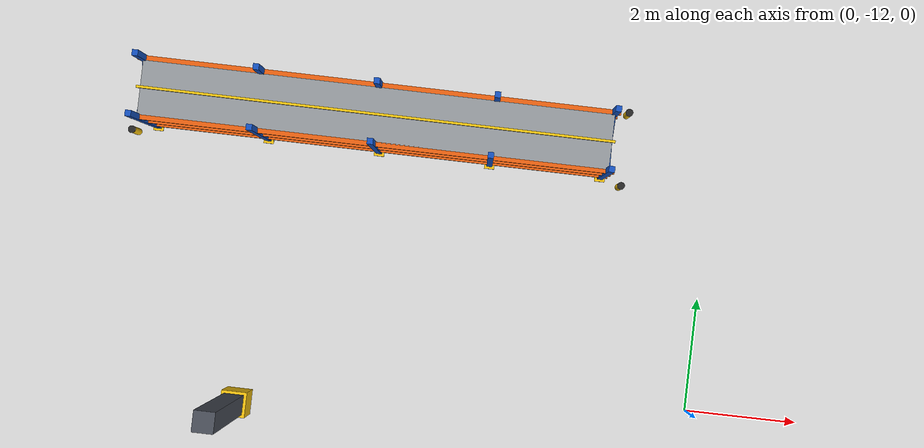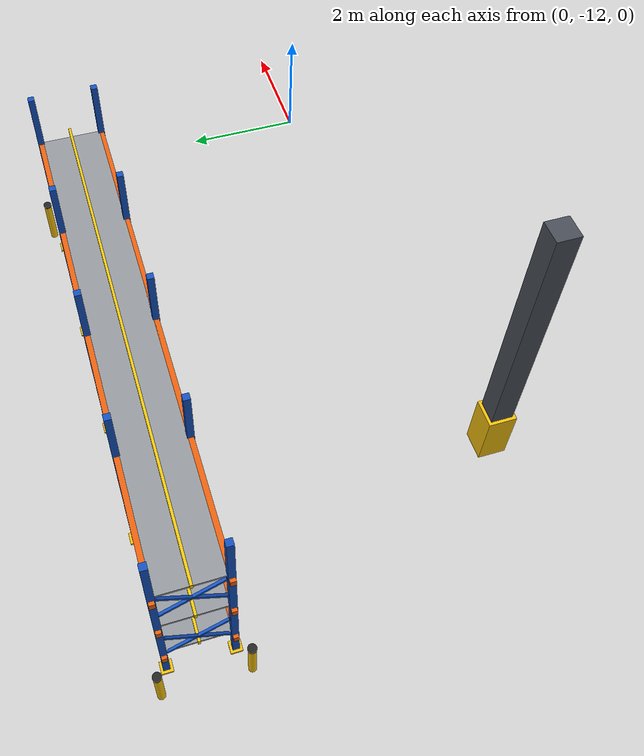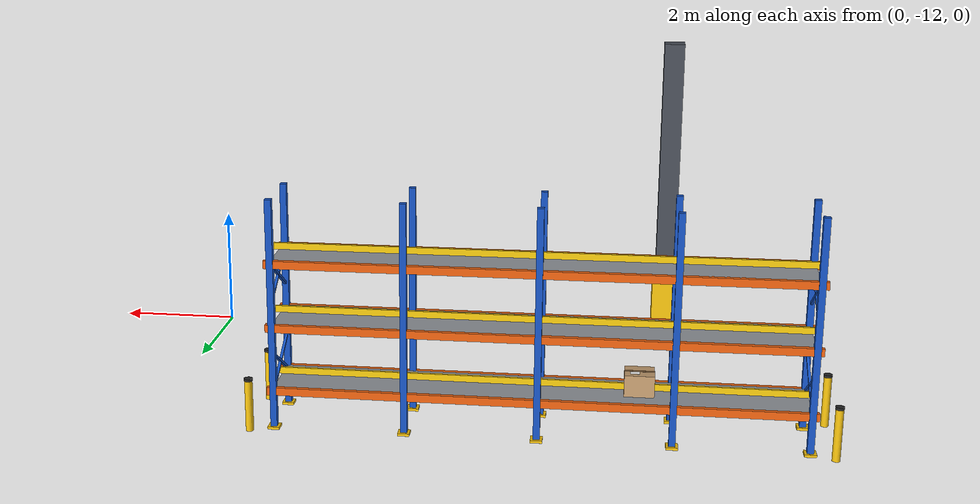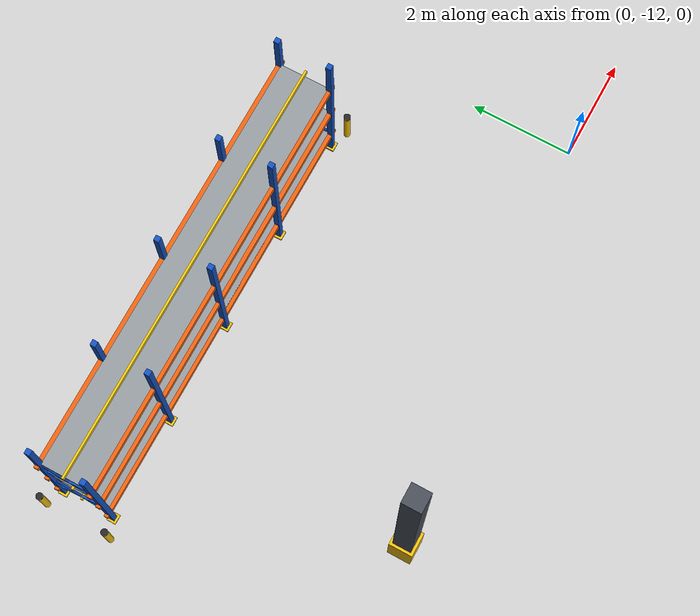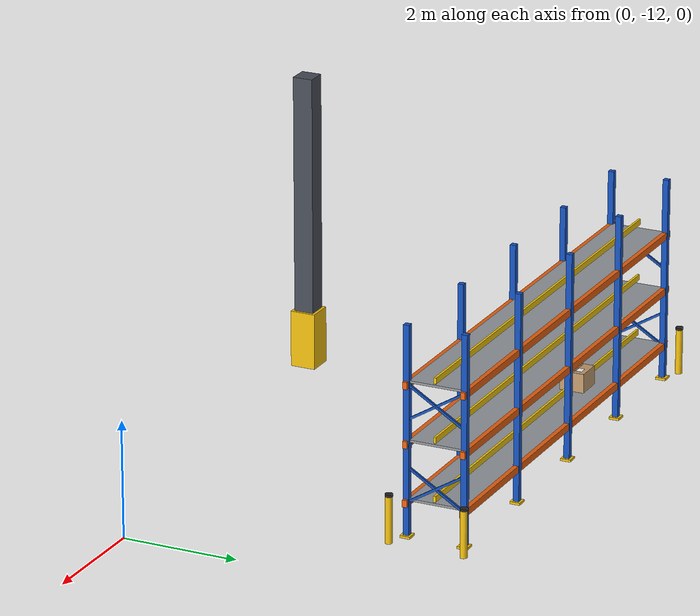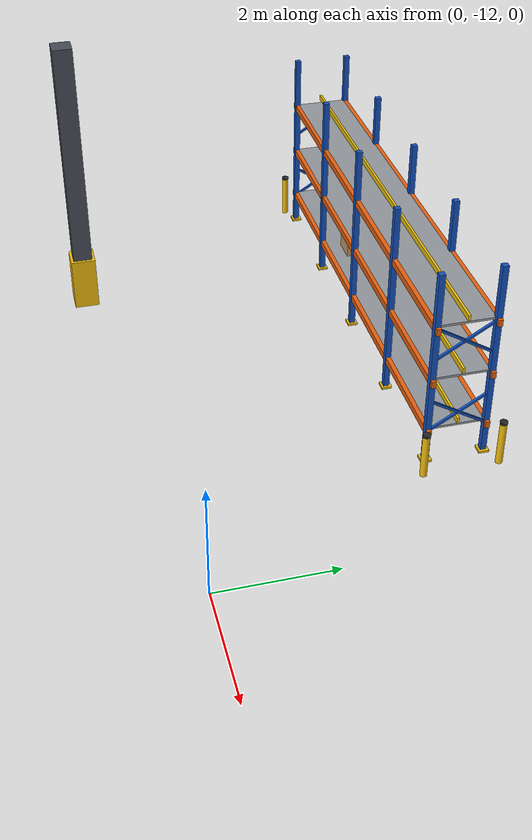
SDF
<sdf version="1.8">
 <world name="warehouse_3d">
  <model name="warehouse_architecture">
   <static>true</static>
   <link name="col_12_base">
    <pose>-8.0000 -12.7500 0.5000 0.0000 0.0000 0.0000</pose>
    <collision name="col_12_base_col">
     <geometry><box><size>0.4500 0.4500 1.0000</size></box></geometry>
    </collision>
    <visual name="col_12_base_vis">
     <geometry><box><size>0.4500 0.4500 1.0000</size></box></geometry>
     <material>
      <ambient>0.617 0.488 0.033 1.00</ambient>
      <diffuse>0.950 0.750 0.050 1.00</diffuse>
      <specular>0.15 0.15 0.15 1.0</specular>
     </material>
    </visual>
   </link>
   <link name="col_12_stem">
    <pose>-8.0000 -12.7500 3.1000 0.0000 0.0000 0.0000</pose>
    <collision name="col_12_stem_col">
     <geometry><box><size>0.3500 0.3500 4.2000</size></box></geometry>
    </collision>
    <visual name="col_12_stem_vis">
     <geometry><box><size>0.3500 0.3500 4.2000</size></box></geometry>
     <material>
      <ambient>0.182 0.195 0.221 1.00</ambient>
      <diffuse>0.280 0.300 0.340 1.00</diffuse>
      <specular>0.15 0.15 0.15 1.0</specular>
     </material>
    </visual>
   </link>
  </model>
  <model name="Rack_A">
   <static>true</static>
   <pose>-6.00 -7.50 0 0 0 0</pose>
   <link name="col_0_0">
    <pose>-4.0000 -0.5000 1.8000 0.0000 0.0000 0.0000</pose>
    <collision name="col_0_0_col"><geometry><box><size>0.1000 0.1000 3.6000</size></box></geometry></collision>
    <visual name="col_0_0_vis">
     <geometry><box><size>0.1000 0.1000 3.6000</size></box></geometry>
     <material>
      <ambient>0.052 0.208 0.488 1.00</ambient>
      <diffuse>0.080 0.320 0.750 1.00</diffuse>
      <specular>0.15 0.15 0.15 1.0</specular>
     </material>
    </visual>
   </link>
   <link name="foot_0_0">
    <pose>-4.0000 -0.5000 0.0200 0.0000 0.0000 0.0000</pose>
    <collision name="foot_0_0_col"><geometry><box><size>0.1800 0.1800 0.0400</size></box></geometry></collision>
    <visual name="foot_0_0_vis">
     <geometry><box><size>0.1800 0.1800 0.0400</size></box></geometry>
     <material>
      <ambient>0.617 0.488 0.033 1.00</ambient>
      <diffuse>0.950 0.750 0.050 1.00</diffuse>
      <specular>0.15 0.15 0.15 1.0</specular>
     </material>
    </visual>
   </link>
   <link name="col_0_1">
    <pose>-4.0000 0.5000 1.8000 0.0000 0.0000 0.0000</pose>
    <collision name="col_0_1_col"><geometry><box><size>0.1000 0.1000 3.6000</size></box></geometry></collision>
    <visual name="col_0_1_vis">
     <geometry><box><size>0.1000 0.1000 3.6000</size></box></geometry>
     <material>
      <ambient>0.052 0.208 0.488 1.00</ambient>
      <diffuse>0.080 0.320 0.750 1.00</diffuse>
      <specular>0.15 0.15 0.15 1.0</specular>
     </material>
    </visual>
   </link>
   <link name="foot_0_1">
    <pose>-4.0000 0.5000 0.0200 0.0000 0.0000 0.0000</pose>
    <collision name="foot_0_1_col"><geometry><box><size>0.1800 0.1800 0.0400</size></box></geometry></collision>
    <visual name="foot_0_1_vis">
     <geometry><box><size>0.1800 0.1800 0.0400</size></box></geometry>
     <material>
      <ambient>0.617 0.488 0.033 1.00</ambient>
      <diffuse>0.950 0.750 0.050 1.00</diffuse>
      <specular>0.15 0.15 0.15 1.0</specular>
     </material>
    </visual>
   </link>
   <link name="col_1_0">
    <pose>-2.0000 -0.5000 1.8000 0.0000 0.0000 0.0000</pose>
    <collision name="col_1_0_col"><geometry><box><size>0.1000 0.1000 3.6000</size></box></geometry></collision>
    <visual name="col_1_0_vis">
     <geometry><box><size>0.1000 0.1000 3.6000</size></box></geometry>
     <material>
      <ambient>0.052 0.208 0.488 1.00</ambient>
      <diffuse>0.080 0.320 0.750 1.00</diffuse>
      <specular>0.15 0.15 0.15 1.0</specular>
     </material>
    </visual>
   </link>
   <link name="foot_1_0">
    <pose>-2.0000 -0.5000 0.0200 0.0000 0.0000 0.0000</pose>
    <collision name="foot_1_0_col"><geometry><box><size>0.1800 0.1800 0.0400</size></box></geometry></collision>
    <visual name="foot_1_0_vis">
     <geometry><box><size>0.1800 0.1800 0.0400</size></box></geometry>
     <material>
      <ambient>0.617 0.488 0.033 1.00</ambient>
      <diffuse>0.950 0.750 0.050 1.00</diffuse>
      <specular>0.15 0.15 0.15 1.0</specular>
     </material>
    </visual>
   </link>
   <link name="col_1_1">
    <pose>-2.0000 0.5000 1.8000 0.0000 0.0000 0.0000</pose>
    <collision name="col_1_1_col"><geometry><box><size>0.1000 0.1000 3.6000</size></box></geometry></collision>
    <visual name="col_1_1_vis">
     <geometry><box><size>0.1000 0.1000 3.6000</size></box></geometry>
     <material>
      <ambient>0.052 0.208 0.488 1.00</ambient>
      <diffuse>0.080 0.320 0.750 1.00</diffuse>
      <specular>0.15 0.15 0.15 1.0</specular>
     </material>
    </visual>
   </link>
   <link name="foot_1_1">
    <pose>-2.0000 0.5000 0.0200 0.0000 0.0000 0.0000</pose>
    <collision name="foot_1_1_col"><geometry><box><size>0.1800 0.1800 0.0400</size></box></geometry></collision>
    <visual name="foot_1_1_vis">
     <geometry><box><size>0.1800 0.1800 0.0400</size></box></geometry>
     <material>
      <ambient>0.617 0.488 0.033 1.00</ambient>
      <diffuse>0.950 0.750 0.050 1.00</diffuse>
      <specular>0.15 0.15 0.15 1.0</specular>
     </material>
    </visual>
   </link>
   <link name="col_2_0">
    <pose>0.0000 -0.5000 1.8000 0.0000 0.0000 0.0000</pose>
    <collision name="col_2_0_col"><geometry><box><size>0.1000 0.1000 3.6000</size></box></geometry></collision>
    <visual name="col_2_0_vis">
     <geometry><box><size>0.1000 0.1000 3.6000</size></box></geometry>
     <material>
      <ambient>0.052 0.208 0.488 1.00</ambient>
      <diffuse>0.080 0.320 0.750 1.00</diffuse>
      <specular>0.15 0.15 0.15 1.0</specular>
     </material>
    </visual>
   </link>
   <link name="foot_2_0">
    <pose>0.0000 -0.5000 0.0200 0.0000 0.0000 0.0000</pose>
    <collision name="foot_2_0_col"><geometry><box><size>0.1800 0.1800 0.0400</size></box></geometry></collision>
    <visual name="foot_2_0_vis">
     <geometry><box><size>0.1800 0.1800 0.0400</size></box></geometry>
     <material>
      <ambient>0.617 0.488 0.033 1.00</ambient>
      <diffuse>0.950 0.750 0.050 1.00</diffuse>
      <specular>0.15 0.15 0.15 1.0</specular>
     </material>
    </visual>
   </link>
   <link name="col_2_1">
    <pose>0.0000 0.5000 1.8000 0.0000 0.0000 0.0000</pose>
    <collision name="col_2_1_col"><geometry><box><size>0.1000 0.1000 3.6000</size></box></geometry></collision>
    <visual name="col_2_1_vis">
     <geometry><box><size>0.1000 0.1000 3.6000</size></box></geometry>
     <material>
      <ambient>0.052 0.208 0.488 1.00</ambient>
      <diffuse>0.080 0.320 0.750 1.00</diffuse>
      <specular>0.15 0.15 0.15 1.0</specular>
     </material>
    </visual>
   </link>
   <link name="foot_2_1">
    <pose>0.0000 0.5000 0.0200 0.0000 0.0000 0.0000</pose>
    <collision name="foot_2_1_col"><geometry><box><size>0.1800 0.1800 0.0400</size></box></geometry></collision>
    <visual name="foot_2_1_vis">
     <geometry><box><size>0.1800 0.1800 0.0400</size></box></geometry>
     <material>
      <ambient>0.617 0.488 0.033 1.00</ambient>
      <diffuse>0.950 0.750 0.050 1.00</diffuse>
      <specular>0.15 0.15 0.15 1.0</specular>
     </material>
    </visual>
   </link>
   <link name="col_3_0">
    <pose>2.0000 -0.5000 1.8000 0.0000 0.0000 0.0000</pose>
    <collision name="col_3_0_col"><geometry><box><size>0.1000 0.1000 3.6000</size></box></geometry></collision>
    <visual name="col_3_0_vis">
     <geometry><box><size>0.1000 0.1000 3.6000</size></box></geometry>
     <material>
      <ambient>0.052 0.208 0.488 1.00</ambient>
      <diffuse>0.080 0.320 0.750 1.00</diffuse>
      <specular>0.15 0.15 0.15 1.0</specular>
     </material>
    </visual>
   </link>
   <link name="foot_3_0">
    <pose>2.0000 -0.5000 0.0200 0.0000 0.0000 0.0000</pose>
    <collision name="foot_3_0_col"><geometry><box><size>0.1800 0.1800 0.0400</size></box></geometry></collision>
    <visual name="foot_3_0_vis">
     <geometry><box><size>0.1800 0.1800 0.0400</size></box></geometry>
     <material>
      <ambient>0.617 0.488 0.033 1.00</ambient>
      <diffuse>0.950 0.750 0.050 1.00</diffuse>
      <specular>0.15 0.15 0.15 1.0</specular>
     </material>
    </visual>
   </link>
   <link name="col_3_1">
    <pose>2.0000 0.5000 1.8000 0.0000 0.0000 0.0000</pose>
    <collision name="col_3_1_col"><geometry><box><size>0.1000 0.1000 3.6000</size></box></geometry></collision>
    <visual name="col_3_1_vis">
     <geometry><box><size>0.1000 0.1000 3.6000</size></box></geometry>
     <material>
      <ambient>0.052 0.208 0.488 1.00</ambient>
      <diffuse>0.080 0.320 0.750 1.00</diffuse>
      <specular>0.15 0.15 0.15 1.0</specular>
     </material>
    </visual>
   </link>
   <link name="foot_3_1">
    <pose>2.0000 0.5000 0.0200 0.0000 0.0000 0.0000</pose>
    <collision name="foot_3_1_col"><geometry><box><size>0.1800 0.1800 0.0400</size></box></geometry></collision>
    <visual name="foot_3_1_vis">
     <geometry><box><size>0.1800 0.1800 0.0400</size></box></geometry>
     <material>
      <ambient>0.617 0.488 0.033 1.00</ambient>
      <diffuse>0.950 0.750 0.050 1.00</diffuse>
      <specular>0.15 0.15 0.15 1.0</specular>
     </material>
    </visual>
   </link>
   <link name="col_4_0">
    <pose>4.0000 -0.5000 1.8000 0.0000 0.0000 0.0000</pose>
    <collision name="col_4_0_col"><geometry><box><size>0.1000 0.1000 3.6000</size></box></geometry></collision>
    <visual name="col_4_0_vis">
     <geometry><box><size>0.1000 0.1000 3.6000</size></box></geometry>
     <material>
      <ambient>0.052 0.208 0.488 1.00</ambient>
      <diffuse>0.080 0.320 0.750 1.00</diffuse>
      <specular>0.15 0.15 0.15 1.0</specular>
     </material>
    </visual>
   </link>
   <link name="foot_4_0">
    <pose>4.0000 -0.5000 0.0200 0.0000 0.0000 0.0000</pose>
    <collision name="foot_4_0_col"><geometry><box><size>0.1800 0.1800 0.0400</size></box></geometry></collision>
    <visual name="foot_4_0_vis">
     <geometry><box><size>0.1800 0.1800 0.0400</size></box></geometry>
     <material>
      <ambient>0.617 0.488 0.033 1.00</ambient>
      <diffuse>0.950 0.750 0.050 1.00</diffuse>
      <specular>0.15 0.15 0.15 1.0</specular>
     </material>
    </visual>
   </link>
   <link name="col_4_1">
    <pose>4.0000 0.5000 1.8000 0.0000 0.0000 0.0000</pose>
    <collision name="col_4_1_col"><geometry><box><size>0.1000 0.1000 3.6000</size></box></geometry></collision>
    <visual name="col_4_1_vis">
     <geometry><box><size>0.1000 0.1000 3.6000</size></box></geometry>
     <material>
      <ambient>0.052 0.208 0.488 1.00</ambient>
      <diffuse>0.080 0.320 0.750 1.00</diffuse>
      <specular>0.15 0.15 0.15 1.0</specular>
     </material>
    </visual>
   </link>
   <link name="foot_4_1">
    <pose>4.0000 0.5000 0.0200 0.0000 0.0000 0.0000</pose>
    <collision name="foot_4_1_col"><geometry><box><size>0.1800 0.1800 0.0400</size></box></geometry></collision>
    <visual name="foot_4_1_vis">
     <geometry><box><size>0.1800 0.1800 0.0400</size></box></geometry>
     <material>
      <ambient>0.617 0.488 0.033 1.00</ambient>
      <diffuse>0.950 0.750 0.050 1.00</diffuse>
      <specular>0.15 0.15 0.15 1.0</specular>
     </material>
    </visual>
   </link>
   <link name="x_brace_low_1_w">
    <pose>-4.0000 0.0000 0.9000 0.5500 0.0000 0.0000</pose>
    <visual name="x_brace_low_1_w_vis">
     <geometry><box><size>0.0400 1.0500 0.0400</size></box></geometry>
     <material>
      <ambient>0.052 0.208 0.488 1.00</ambient>
      <diffuse>0.080 0.320 0.750 1.00</diffuse>
      <specular>0.15 0.15 0.15 1.0</specular>
     </material>
    </visual>
   </link>
   <link name="x_brace_low_2_w">
    <pose>-4.0000 0.0000 0.9000 -0.5500 0.0000 0.0000</pose>
    <visual name="x_brace_low_2_w_vis">
     <geometry><box><size>0.0400 1.0500 0.0400</size></box></geometry>
     <material>
      <ambient>0.052 0.208 0.488 1.00</ambient>
      <diffuse>0.080 0.320 0.750 1.00</diffuse>
      <specular>0.15 0.15 0.15 1.0</specular>
     </material>
    </visual>
   </link>
   <link name="x_brace_hi_1_w">
    <pose>-4.0000 0.0000 2.3000 0.5500 0.0000 0.0000</pose>
    <visual name="x_brace_hi_1_w_vis">
     <geometry><box><size>0.0400 1.0500 0.0400</size></box></geometry>
     <material>
      <ambient>0.052 0.208 0.488 1.00</ambient>
      <diffuse>0.080 0.320 0.750 1.00</diffuse>
      <specular>0.15 0.15 0.15 1.0</specular>
     </material>
    </visual>
   </link>
   <link name="x_brace_hi_2_w">
    <pose>-4.0000 0.0000 2.3000 -0.5500 0.0000 0.0000</pose>
    <visual name="x_brace_hi_2_w_vis">
     <geometry><box><size>0.0400 1.0500 0.0400</size></box></geometry>
     <material>
      <ambient>0.052 0.208 0.488 1.00</ambient>
      <diffuse>0.080 0.320 0.750 1.00</diffuse>
      <specular>0.15 0.15 0.15 1.0</specular>
     </material>
    </visual>
   </link>
   <link name="x_brace_low_1_e">
    <pose>4.0000 0.0000 0.9000 0.5500 0.0000 0.0000</pose>
    <visual name="x_brace_low_1_e_vis">
     <geometry><box><size>0.0400 1.0500 0.0400</size></box></geometry>
     <material>
      <ambient>0.052 0.208 0.488 1.00</ambient>
      <diffuse>0.080 0.320 0.750 1.00</diffuse>
      <specular>0.15 0.15 0.15 1.0</specular>
     </material>
    </visual>
   </link>
   <link name="x_brace_low_2_e">
    <pose>4.0000 0.0000 0.9000 -0.5500 0.0000 0.0000</pose>
    <visual name="x_brace_low_2_e_vis">
     <geometry><box><size>0.0400 1.0500 0.0400</size></box></geometry>
     <material>
      <ambient>0.052 0.208 0.488 1.00</ambient>
      <diffuse>0.080 0.320 0.750 1.00</diffuse>
      <specular>0.15 0.15 0.15 1.0</specular>
     </material>
    </visual>
   </link>
   <link name="x_brace_hi_1_e">
    <pose>4.0000 0.0000 2.3000 0.5500 0.0000 0.0000</pose>
    <visual name="x_brace_hi_1_e_vis">
     <geometry><box><size>0.0400 1.0500 0.0400</size></box></geometry>
     <material>
      <ambient>0.052 0.208 0.488 1.00</ambient>
      <diffuse>0.080 0.320 0.750 1.00</diffuse>
      <specular>0.15 0.15 0.15 1.0</specular>
     </material>
    </visual>
   </link>
   <link name="x_brace_hi_2_e">
    <pose>4.0000 0.0000 2.3000 -0.5500 0.0000 0.0000</pose>
    <visual name="x_brace_hi_2_e_vis">
     <geometry><box><size>0.0400 1.0500 0.0400</size></box></geometry>
     <material>
      <ambient>0.052 0.208 0.488 1.00</ambient>
      <diffuse>0.080 0.320 0.750 1.00</diffuse>
      <specular>0.15 0.15 0.15 1.0</specular>
     </material>
    </visual>
   </link>
   <link name="beam_front_0">
    <pose>0.0000 0.5000 0.6000 0.0000 0.0000 0.0000</pose>
    <collision name="beam_front_0_col">
     <geometry><box><size>8.2000 0.0800 0.1200</size></box></geometry>
    </collision>
    <visual name="beam_front_0_vis">
     <geometry><box><size>8.2000 0.0800 0.1200</size></box></geometry>
     <material>
      <ambient>0.598 0.247 0.039 1.00</ambient>
      <diffuse>0.920 0.380 0.060 1.00</diffuse>
      <specular>0.15 0.15 0.15 1.0</specular>
     </material>
    </visual>
   </link>
   <link name="beam_rear_0">
    <pose>0.0000 -0.5000 0.6000 0.0000 0.0000 0.0000</pose>
    <collision name="beam_rear_0_col">
     <geometry><box><size>8.2000 0.0800 0.1200</size></box></geometry>
    </collision>
    <visual name="beam_rear_0_vis">
     <geometry><box><size>8.2000 0.0800 0.1200</size></box></geometry>
     <material>
      <ambient>0.598 0.247 0.039 1.00</ambient>
      <diffuse>0.920 0.380 0.060 1.00</diffuse>
      <specular>0.15 0.15 0.15 1.0</specular>
     </material>
    </visual>
   </link>
   <link name="deck_0">
    <pose>0.0000 0.0000 0.6400 0.0000 0.0000 0.0000</pose>
    <collision name="deck_0_col"><geometry><box><size>8.0000 0.9400 0.0400</size></box></geometry></collision>
    <visual name="deck_0_vis">
     <geometry><box><size>8.0000 0.9400 0.0400</size></box></geometry>
     <material>
      <ambient>0.377 0.390 0.403 1.00</ambient>
      <diffuse>0.580 0.600 0.620 1.00</diffuse>
      <specular>0.15 0.15 0.15 1.0</specular>
     </material>
    </visual>
   </link>
   <link name="backstop_0">
    <pose>0.0000 0.0000 0.7500 0.0000 0.0000 0.0000</pose>
    <visual name="backstop_0_vis">
     <geometry><box><size>8.1000 0.0400 0.1000</size></box></geometry>
     <material>
      <ambient>0.617 0.507 0.033 1.00</ambient>
      <diffuse>0.950 0.780 0.050 1.00</diffuse>
      <specular>0.15 0.15 0.15 1.0</specular>
     </material>
    </visual>
   </link>
   <link name="beam_front_1">
    <pose>0.0000 0.5000 1.6000 0.0000 0.0000 0.0000</pose>
    <collision name="beam_front_1_col">
     <geometry><box><size>8.2000 0.0800 0.1200</size></box></geometry>
    </collision>
    <visual name="beam_front_1_vis">
     <geometry><box><size>8.2000 0.0800 0.1200</size></box></geometry>
     <material>
      <ambient>0.598 0.247 0.039 1.00</ambient>
      <diffuse>0.920 0.380 0.060 1.00</diffuse>
      <specular>0.15 0.15 0.15 1.0</specular>
     </material>
    </visual>
   </link>
   <link name="beam_rear_1">
    <pose>0.0000 -0.5000 1.6000 0.0000 0.0000 0.0000</pose>
    <collision name="beam_rear_1_col">
     <geometry><box><size>8.2000 0.0800 0.1200</size></box></geometry>
    </collision>
    <visual name="beam_rear_1_vis">
     <geometry><box><size>8.2000 0.0800 0.1200</size></box></geometry>
     <material>
      <ambient>0.598 0.247 0.039 1.00</ambient>
      <diffuse>0.920 0.380 0.060 1.00</diffuse>
      <specular>0.15 0.15 0.15 1.0</specular>
     </material>
    </visual>
   </link>
   <link name="deck_1">
    <pose>0.0000 0.0000 1.6400 0.0000 0.0000 0.0000</pose>
    <collision name="deck_1_col"><geometry><box><size>8.0000 0.9400 0.0400</size></box></geometry></collision>
    <visual name="deck_1_vis">
     <geometry><box><size>8.0000 0.9400 0.0400</size></box></geometry>
     <material>
      <ambient>0.377 0.390 0.403 1.00</ambient>
      <diffuse>0.580 0.600 0.620 1.00</diffuse>
      <specular>0.15 0.15 0.15 1.0</specular>
     </material>
    </visual>
   </link>
   <link name="backstop_1">
    <pose>0.0000 0.0000 1.7500 0.0000 0.0000 0.0000</pose>
    <visual name="backstop_1_vis">
     <geometry><box><size>8.1000 0.0400 0.1000</size></box></geometry>
     <material>
      <ambient>0.617 0.507 0.033 1.00</ambient>
      <diffuse>0.950 0.780 0.050 1.00</diffuse>
      <specular>0.15 0.15 0.15 1.0</specular>
     </material>
    </visual>
   </link>
   <link name="beam_front_2">
    <pose>0.0000 0.5000 2.6000 0.0000 0.0000 0.0000</pose>
    <collision name="beam_front_2_col">
     <geometry><box><size>8.2000 0.0800 0.1200</size></box></geometry>
    </collision>
    <visual name="beam_front_2_vis">
     <geometry><box><size>8.2000 0.0800 0.1200</size></box></geometry>
     <material>
      <ambient>0.598 0.247 0.039 1.00</ambient>
      <diffuse>0.920 0.380 0.060 1.00</diffuse>
      <specular>0.15 0.15 0.15 1.0</specular>
     </material>
    </visual>
   </link>
   <link name="beam_rear_2">
    <pose>0.0000 -0.5000 2.6000 0.0000 0.0000 0.0000</pose>
    <collision name="beam_rear_2_col">
     <geometry><box><size>8.2000 0.0800 0.1200</size></box></geometry>
    </collision>
    <visual name="beam_rear_2_vis">
     <geometry><box><size>8.2000 0.0800 0.1200</size></box></geometry>
     <material>
      <ambient>0.598 0.247 0.039 1.00</ambient>
      <diffuse>0.920 0.380 0.060 1.00</diffuse>
      <specular>0.15 0.15 0.15 1.0</specular>
     </material>
    </visual>
   </link>
   <link name="deck_2">
    <pose>0.0000 0.0000 2.6400 0.0000 0.0000 0.0000</pose>
    <collision name="deck_2_col"><geometry><box><size>8.0000 0.9400 0.0400</size></box></geometry></collision>
    <visual name="deck_2_vis">
     <geometry><box><size>8.0000 0.9400 0.0400</size></box></geometry>
     <material>
      <ambient>0.377 0.390 0.403 1.00</ambient>
      <diffuse>0.580 0.600 0.620 1.00</diffuse>
      <specular>0.15 0.15 0.15 1.0</specular>
     </material>
    </visual>
   </link>
   <link name="backstop_2">
    <pose>0.0000 0.0000 2.7500 0.0000 0.0000 0.0000</pose>
    <visual name="backstop_2_vis">
     <geometry><box><size>8.1000 0.0400 0.1000</size></box></geometry>
     <material>
      <ambient>0.617 0.507 0.033 1.00</ambient>
      <diffuse>0.950 0.780 0.050 1.00</diffuse>
      <specular>0.15 0.15 0.15 1.0</specular>
     </material>
    </visual>
   </link>
   <link name="bollard_0">
    <pose>-4.3500 -0.6500 0.4000 0.0000 0.0000 0.0000</pose>
    <collision name="bollard_0_col">
     <geometry><cylinder><radius>0.0600</radius><length>0.8000</length></cylinder></geometry>
    </collision>
    <visual name="bollard_0_vis">
     <geometry><cylinder><radius>0.0600</radius><length>0.8000</length></cylinder></geometry>
     <material>
      <ambient>0.617 0.488 0.033 1.00</ambient>
      <diffuse>0.950 0.750 0.050 1.00</diffuse>
      <specular>0.2 0.2 0.2 1.0</specular>
     </material>
    </visual>
   </link>
   <link name="bollard_cap_0">
    <pose>-4.3500 -0.6500 0.8200 0.0000 0.0000 0.0000</pose>
    <collision name="bollard_cap_0_col">
     <geometry><cylinder><radius>0.0650</radius><length>0.0400</length></cylinder></geometry>
    </collision>
    <visual name="bollard_cap_0_vis">
     <geometry><cylinder><radius>0.0650</radius><length>0.0400</length></cylinder></geometry>
     <material>
      <ambient>0.098 0.098 0.098 1.00</ambient>
      <diffuse>0.150 0.150 0.150 1.00</diffuse>
      <specular>0.2 0.2 0.2 1.0</specular>
     </material>
    </visual>
   </link>
   <link name="bollard_1">
    <pose>-4.3500 0.6500 0.4000 0.0000 0.0000 0.0000</pose>
    <collision name="bollard_1_col">
     <geometry><cylinder><radius>0.0600</radius><length>0.8000</length></cylinder></geometry>
    </collision>
    <visual name="bollard_1_vis">
     <geometry><cylinder><radius>0.0600</radius><length>0.8000</length></cylinder></geometry>
     <material>
      <ambient>0.617 0.488 0.033 1.00</ambient>
      <diffuse>0.950 0.750 0.050 1.00</diffuse>
      <specular>0.2 0.2 0.2 1.0</specular>
     </material>
    </visual>
   </link>
   <link name="bollard_cap_1">
    <pose>-4.3500 0.6500 0.8200 0.0000 0.0000 0.0000</pose>
    <collision name="bollard_cap_1_col">
     <geometry><cylinder><radius>0.0650</radius><length>0.0400</length></cylinder></geometry>
    </collision>
    <visual name="bollard_cap_1_vis">
     <geometry><cylinder><radius>0.0650</radius><length>0.0400</length></cylinder></geometry>
     <material>
      <ambient>0.098 0.098 0.098 1.00</ambient>
      <diffuse>0.150 0.150 0.150 1.00</diffuse>
      <specular>0.2 0.2 0.2 1.0</specular>
     </material>
    </visual>
   </link>
   <link name="bollard_2">
    <pose>4.3500 -0.6500 0.4000 0.0000 0.0000 0.0000</pose>
    <collision name="bollard_2_col">
     <geometry><cylinder><radius>0.0600</radius><length>0.8000</length></cylinder></geometry>
    </collision>
    <visual name="bollard_2_vis">
     <geometry><cylinder><radius>0.0600</radius><length>0.8000</length></cylinder></geometry>
     <material>
      <ambient>0.617 0.488 0.033 1.00</ambient>
      <diffuse>0.950 0.750 0.050 1.00</diffuse>
      <specular>0.2 0.2 0.2 1.0</specular>
     </material>
    </visual>
   </link>
   <link name="bollard_cap_2">
    <pose>4.3500 -0.6500 0.8200 0.0000 0.0000 0.0000</pose>
    <collision name="bollard_cap_2_col">
     <geometry><cylinder><radius>0.0650</radius><length>0.0400</length></cylinder></geometry>
    </collision>
    <visual name="bollard_cap_2_vis">
     <geometry><cylinder><radius>0.0650</radius><length>0.0400</length></cylinder></geometry>
     <material>
      <ambient>0.098 0.098 0.098 1.00</ambient>
      <diffuse>0.150 0.150 0.150 1.00</diffuse>
      <specular>0.2 0.2 0.2 1.0</specular>
     </material>
    </visual>
   </link>
   <link name="bollard_3">
    <pose>4.3500 0.6500 0.4000 0.0000 0.0000 0.0000</pose>
    <collision name="bollard_3_col">
     <geometry><cylinder><radius>0.0600</radius><length>0.8000</length></cylinder></geometry>
    </collision>
    <visual name="bollard_3_vis">
     <geometry><cylinder><radius>0.0600</radius><length>0.8000</length></cylinder></geometry>
     <material>
      <ambient>0.617 0.488 0.033 1.00</ambient>
      <diffuse>0.950 0.750 0.050 1.00</diffuse>
      <specular>0.2 0.2 0.2 1.0</specular>
     </material>
    </visual>
   </link>
   <link name="bollard_cap_3">
    <pose>4.3500 0.6500 0.8200 0.0000 0.0000 0.0000</pose>
    <collision name="bollard_cap_3_col">
     <geometry><cylinder><radius>0.0650</radius><length>0.0400</length></cylinder></geometry>
    </collision>
    <visual name="bollard_cap_3_vis">
     <geometry><cylinder><radius>0.0650</radius><length>0.0400</length></cylinder></geometry>
     <material>
      <ambient>0.098 0.098 0.098 1.00</ambient>
      <diffuse>0.150 0.150 0.150 1.00</diffuse>
      <specular>0.2 0.2 0.2 1.0</specular>
     </material>
    </visual>
   </link>
  </model>
  <model name="package_P002">
   <static>true</static>
   <pose>-7.50 -7.50 0.82 0 0 0</pose>
   <link name="box_link">
    <collision name="box_col"><geometry><box><size>0.45 0.43 0.35</size></box></geometry></collision>
    <visual name="box_vis">
     <geometry><box><size>0.45 0.43 0.35</size></box></geometry>
     <material>
      <ambient>0.53 0.43 0.30 1.0</ambient>
      <diffuse>0.76 0.61 0.43 1.0</diffuse>
      <specular>0.08 0.08 0.08 1.0</specular>
     </material>
    </visual>
    <visual name="top_tape">
     <pose>0 0 0.1760 0 0 0</pose>
     <geometry><box><size>0.452 0.05 0.002</size></box></geometry>
     <material><ambient>0.48 0.35 0.20 1.0</ambient><diffuse>0.55 0.40 0.24 1.0</diffuse></material>
    </visual>
    <visual name="shipping_label">
     <pose>0.068 0.086 0.1770 0 0 0</pose>
     <geometry><box><size>0.14 0.10 0.002</size></box></geometry>
     <material><ambient>0.92 0.92 0.92 1.0</ambient><diffuse>0.98 0.98 0.98 1.0</diffuse></material>
    </visual>
   </link>
  </model>
 </world>
</sdf>
